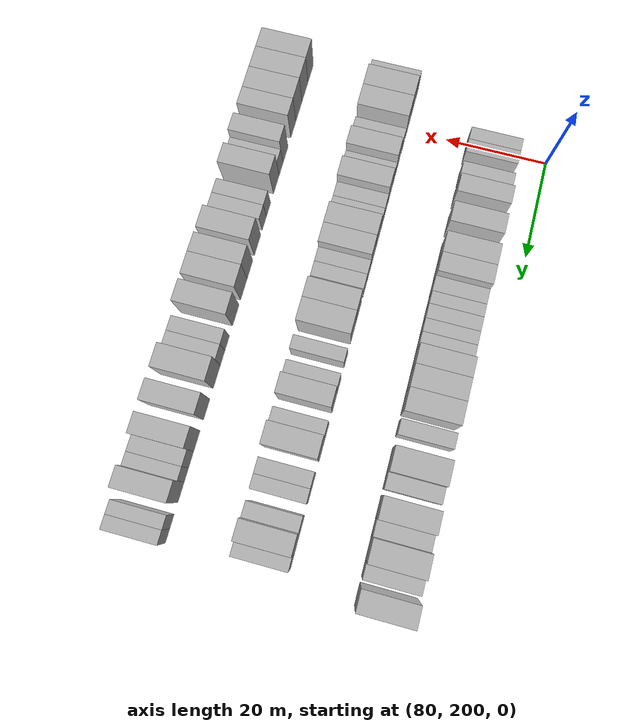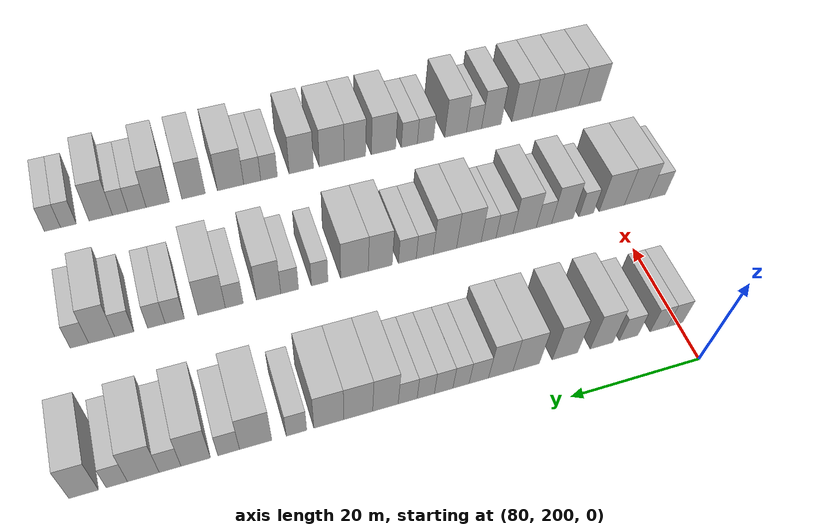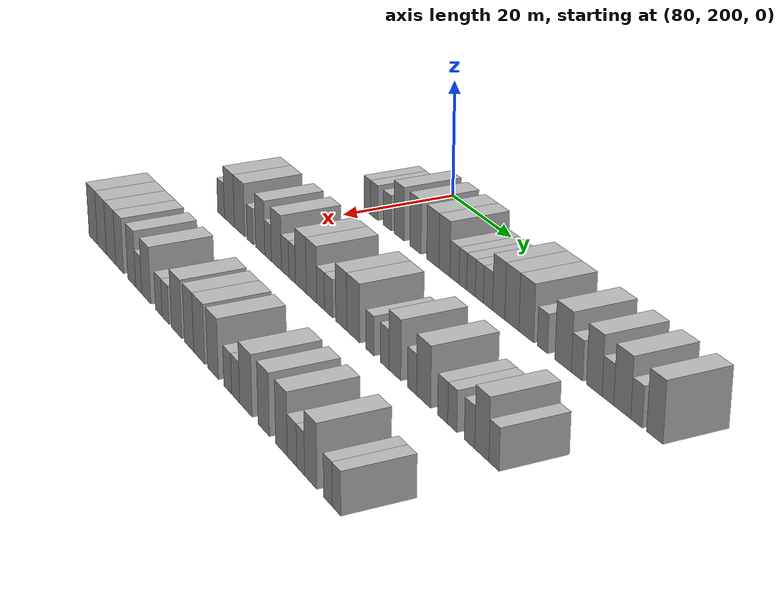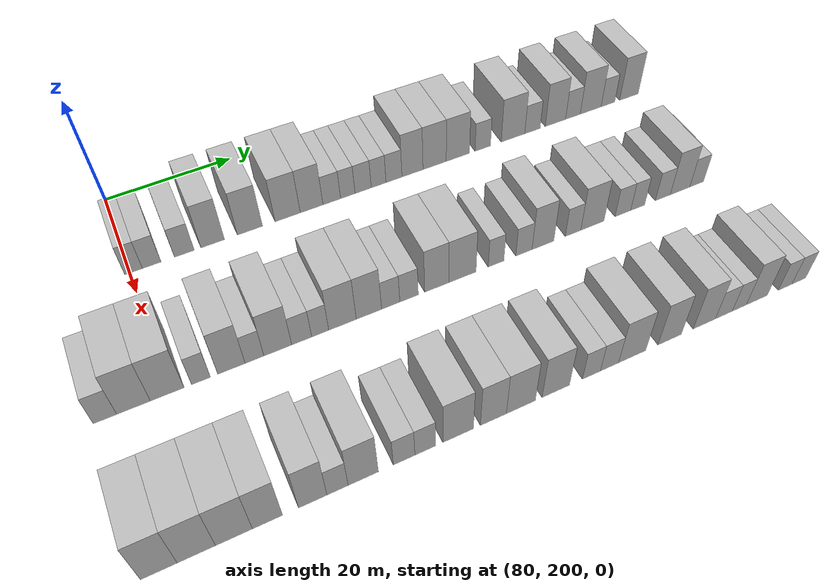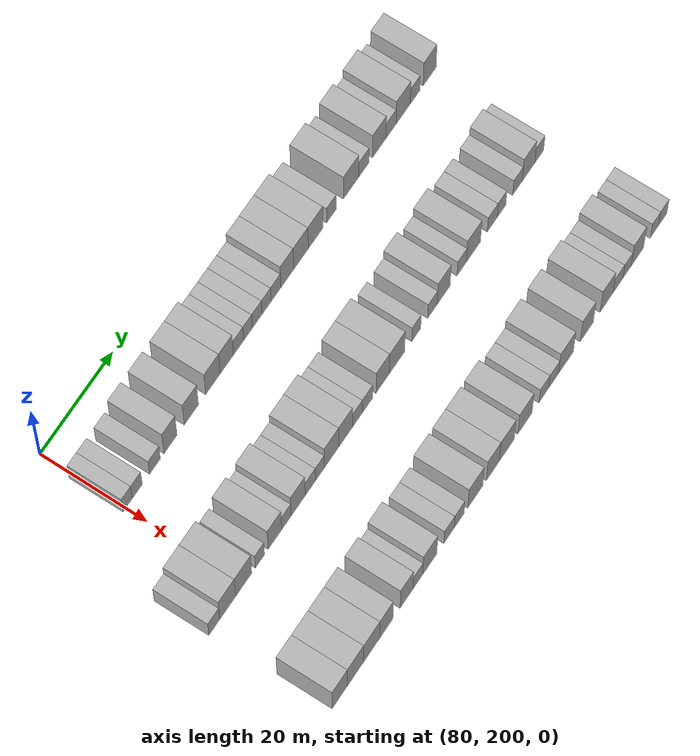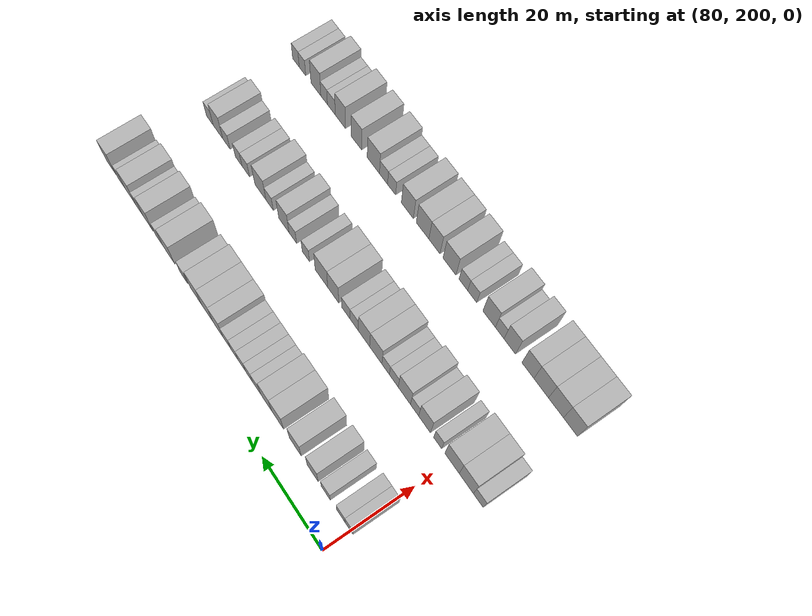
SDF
<sdf version="1.6">
 <world name="default">
  <model name="building_724">
   <static>1</static>
   <pose>91.0000 200.5342 0 0.000000 0.000000 0.000000</pose>
   <link name="link">
    <pose>0 0 3.00 0 0 0</pose>
    <collision name="collision"><geometry><box><size>10.0000 2.5704 6.0000</size></box></geometry></collision>
    <visual name="visual">
     <cast_shadows>0</cast_shadows>
     <geometry><box><size>10.0000 2.5704 6.0000</size></box></geometry>
     <material>
      <script>
       <uri>model://HANNAS_wall/materials/scripts</uri>
       <uri>model://HANNAS_wall/materials/textures</uri>
       <name>vrc/HANNAS_wall</name>
      </script>
     </material>
    </visual>
   </link>
  </model>
  <model name="building_725">
   <static>1</static>
   <pose>91.0000 203.1824 0 0.000000 0.000000 0.000000</pose>
   <link name="link">
    <pose>0 0 3.00 0 0 0</pose>
    <collision name="collision"><geometry><box><size>10.0000 2.7260 6.0000</size></box></geometry></collision>
    <visual name="visual">
     <cast_shadows>0</cast_shadows>
     <geometry><box><size>10.0000 2.7260 6.0000</size></box></geometry>
     <material>
      <script>
       <uri>model://HANNAS_wall/materials/scripts</uri>
       <uri>model://HANNAS_wall/materials/textures</uri>
       <name>vrc/HANNAS_wall</name>
      </script>
     </material>
    </visual>
   </link>
  </model>
  <model name="building_726">
   <static>1</static>
   <pose>91.0000 208.0275 0 0.000000 0.000000 0.000000</pose>
   <link name="link">
    <pose>0 0 3.00 0 0 0</pose>
    <collision name="collision"><geometry><box><size>10.0000 2.9641 6.0000</size></box></geometry></collision>
    <visual name="visual">
     <cast_shadows>0</cast_shadows>
     <geometry><box><size>10.0000 2.9641 6.0000</size></box></geometry>
     <material>
      <script>
       <uri>model://HANNAS_wall/materials/scripts</uri>
       <uri>model://HANNAS_wall/materials/textures</uri>
       <name>vrc/HANNAS_wall</name>
      </script>
     </material>
    </visual>
   </link>
  </model>
  <model name="building_727">
   <static>1</static>
   <pose>91.0000 212.3135 0 0.000000 0.000000 0.000000</pose>
   <link name="link">
    <pose>0 0 4.50 0 0 0</pose>
    <collision name="collision"><geometry><box><size>10.0000 3.6080 9.0000</size></box></geometry></collision>
    <visual name="visual">
     <cast_shadows>0</cast_shadows>
     <geometry><box><size>10.0000 3.6080 9.0000</size></box></geometry>
     <material>
      <script>
       <uri>model://HANNAS_wall/materials/scripts</uri>
       <uri>model://HANNAS_wall/materials/textures</uri>
       <name>vrc/HANNAS_wall</name>
      </script>
     </material>
    </visual>
   </link>
  </model>
  <model name="building_728">
   <static>1</static>
   <pose>91.0000 218.0869 0 0.000000 0.000000 0.000000</pose>
   <link name="link">
    <pose>0 0 4.50 0 0 0</pose>
    <collision name="collision"><geometry><box><size>10.0000 3.9387 9.0000</size></box></geometry></collision>
    <visual name="visual">
     <cast_shadows>0</cast_shadows>
     <geometry><box><size>10.0000 3.9387 9.0000</size></box></geometry>
     <material>
      <script>
       <uri>model://HANNAS_wall/materials/scripts</uri>
       <uri>model://HANNAS_wall/materials/textures</uri>
       <name>vrc/HANNAS_wall</name>
      </script>
     </material>
    </visual>
   </link>
  </model>
  <model name="building_729">
   <static>1</static>
   <pose>91.0000 224.0841 0 0.000000 0.000000 0.000000</pose>
   <link name="link">
    <pose>0 0 4.50 0 0 0</pose>
    <collision name="collision"><geometry><box><size>10.0000 4.0559 9.0000</size></box></geometry></collision>
    <visual name="visual">
     <cast_shadows>0</cast_shadows>
     <geometry><box><size>10.0000 4.0559 9.0000</size></box></geometry>
     <material>
      <script>
       <uri>model://HANNAS_wall/materials/scripts</uri>
       <uri>model://HANNAS_wall/materials/textures</uri>
       <name>vrc/HANNAS_wall</name>
      </script>
     </material>
    </visual>
   </link>
  </model>
  <model name="building_730">
   <static>1</static>
   <pose>91.0000 227.9658 0 0.000000 0.000000 0.000000</pose>
   <link name="link">
    <pose>0 0 4.50 0 0 0</pose>
    <collision name="collision"><geometry><box><size>10.0000 3.7074 9.0000</size></box></geometry></collision>
    <visual name="visual">
     <cast_shadows>0</cast_shadows>
     <geometry><box><size>10.0000 3.7074 9.0000</size></box></geometry>
     <material>
      <script>
       <uri>model://HANNAS_wall/materials/scripts</uri>
       <uri>model://HANNAS_wall/materials/textures</uri>
       <name>vrc/HANNAS_wall</name>
      </script>
     </material>
    </visual>
   </link>
  </model>
  <model name="building_731">
   <static>1</static>
   <pose>91.0000 231.2792 0 0.000000 0.000000 0.000000</pose>
   <link name="link">
    <pose>0 0 3.00 0 0 0</pose>
    <collision name="collision"><geometry><box><size>10.0000 2.9194 6.0000</size></box></geometry></collision>
    <visual name="visual">
     <cast_shadows>0</cast_shadows>
     <geometry><box><size>10.0000 2.9194 6.0000</size></box></geometry>
     <material>
      <script>
       <uri>model://HANNAS_wall/materials/scripts</uri>
       <uri>model://HANNAS_wall/materials/textures</uri>
       <name>vrc/HANNAS_wall</name>
      </script>
     </material>
    </visual>
   </link>
  </model>
  <model name="building_732">
   <static>1</static>
   <pose>91.0000 233.9498 0 0.000000 0.000000 0.000000</pose>
   <link name="link">
    <pose>0 0 3.00 0 0 0</pose>
    <collision name="collision"><geometry><box><size>10.0000 2.4220 6.0000</size></box></geometry></collision>
    <visual name="visual">
     <cast_shadows>0</cast_shadows>
     <geometry><box><size>10.0000 2.4220 6.0000</size></box></geometry>
     <material>
      <script>
       <uri>model://HANNAS_wall/materials/scripts</uri>
       <uri>model://HANNAS_wall/materials/textures</uri>
       <name>vrc/HANNAS_wall</name>
      </script>
     </material>
    </visual>
   </link>
  </model>
  <model name="building_733">
   <static>1</static>
   <pose>91.0000 236.5316 0 0.000000 0.000000 0.000000</pose>
   <link name="link">
    <pose>0 0 3.00 0 0 0</pose>
    <collision name="collision"><geometry><box><size>10.0000 2.7415 6.0000</size></box></geometry></collision>
    <visual name="visual">
     <cast_shadows>0</cast_shadows>
     <geometry><box><size>10.0000 2.7415 6.0000</size></box></geometry>
     <material>
      <script>
       <uri>model://HANNAS_wall/materials/scripts</uri>
       <uri>model://HANNAS_wall/materials/textures</uri>
       <name>vrc/HANNAS_wall</name>
      </script>
     </material>
    </visual>
   </link>
  </model>
  <model name="building_734">
   <static>1</static>
   <pose>91.0000 239.1715 0 0.000000 0.000000 0.000000</pose>
   <link name="link">
    <pose>0 0 3.00 0 0 0</pose>
    <collision name="collision"><geometry><box><size>10.0000 2.5385 6.0000</size></box></geometry></collision>
    <visual name="visual">
     <cast_shadows>0</cast_shadows>
     <geometry><box><size>10.0000 2.5385 6.0000</size></box></geometry>
     <material>
      <script>
       <uri>model://HANNAS_wall/materials/scripts</uri>
       <uri>model://HANNAS_wall/materials/textures</uri>
       <name>vrc/HANNAS_wall</name>
      </script>
     </material>
    </visual>
   </link>
  </model>
  <model name="building_735">
   <static>1</static>
   <pose>91.0000 241.8214 0 0.000000 0.000000 0.000000</pose>
   <link name="link">
    <pose>0 0 3.00 0 0 0</pose>
    <collision name="collision"><geometry><box><size>10.0000 2.7613 6.0000</size></box></geometry></collision>
    <visual name="visual">
     <cast_shadows>0</cast_shadows>
     <geometry><box><size>10.0000 2.7613 6.0000</size></box></geometry>
     <material>
      <script>
       <uri>model://HANNAS_wall/materials/scripts</uri>
       <uri>model://HANNAS_wall/materials/textures</uri>
       <name>vrc/HANNAS_wall</name>
      </script>
     </material>
    </visual>
   </link>
  </model>
  <model name="building_736">
   <static>1</static>
   <pose>91.0000 245.0454 0 0.000000 0.000000 0.000000</pose>
   <link name="link">
    <pose>0 0 4.50 0 0 0</pose>
    <collision name="collision"><geometry><box><size>10.0000 3.6866 9.0000</size></box></geometry></collision>
    <visual name="visual">
     <cast_shadows>0</cast_shadows>
     <geometry><box><size>10.0000 3.6866 9.0000</size></box></geometry>
     <material>
      <script>
       <uri>model://HANNAS_wall/materials/scripts</uri>
       <uri>model://HANNAS_wall/materials/textures</uri>
       <name>vrc/HANNAS_wall</name>
      </script>
     </material>
    </visual>
   </link>
  </model>
  <model name="building_737">
   <static>1</static>
   <pose>91.0000 248.9624 0 0.000000 0.000000 0.000000</pose>
   <link name="link">
    <pose>0 0 4.50 0 0 0</pose>
    <collision name="collision"><geometry><box><size>10.0000 4.1474 9.0000</size></box></geometry></collision>
    <visual name="visual">
     <cast_shadows>0</cast_shadows>
     <geometry><box><size>10.0000 4.1474 9.0000</size></box></geometry>
     <material>
      <script>
       <uri>model://HANNAS_wall/materials/scripts</uri>
       <uri>model://HANNAS_wall/materials/textures</uri>
       <name>vrc/HANNAS_wall</name>
      </script>
     </material>
    </visual>
   </link>
  </model>
  <model name="building_738">
   <static>1</static>
   <pose>91.0000 253.1452 0 0.000000 0.000000 0.000000</pose>
   <link name="link">
    <pose>0 0 4.50 0 0 0</pose>
    <collision name="collision"><geometry><box><size>10.0000 4.2182 9.0000</size></box></geometry></collision>
    <visual name="visual">
     <cast_shadows>0</cast_shadows>
     <geometry><box><size>10.0000 4.2182 9.0000</size></box></geometry>
     <material>
      <script>
       <uri>model://HANNAS_wall/materials/scripts</uri>
       <uri>model://HANNAS_wall/materials/textures</uri>
       <name>vrc/HANNAS_wall</name>
      </script>
     </material>
    </visual>
   </link>
  </model>
  <model name="building_739">
   <static>1</static>
   <pose>91.0000 257.6823 0 0.000000 0.000000 0.000000</pose>
   <link name="link">
    <pose>0 0 3.00 0 0 0</pose>
    <collision name="collision"><geometry><box><size>10.0000 2.8561 6.0000</size></box></geometry></collision>
    <visual name="visual">
     <cast_shadows>0</cast_shadows>
     <geometry><box><size>10.0000 2.8561 6.0000</size></box></geometry>
     <material>
      <script>
       <uri>model://HANNAS_wall/materials/scripts</uri>
       <uri>model://HANNAS_wall/materials/textures</uri>
       <name>vrc/HANNAS_wall</name>
      </script>
     </material>
    </visual>
   </link>
  </model>
  <model name="building_740">
   <static>1</static>
   <pose>91.0000 263.3338 0 0.000000 0.000000 0.000000</pose>
   <link name="link">
    <pose>0 0 4.50 0 0 0</pose>
    <collision name="collision"><geometry><box><size>10.0000 4.4469 9.0000</size></box></geometry></collision>
    <visual name="visual">
     <cast_shadows>0</cast_shadows>
     <geometry><box><size>10.0000 4.4469 9.0000</size></box></geometry>
     <material>
      <script>
       <uri>model://HANNAS_wall/materials/scripts</uri>
       <uri>model://HANNAS_wall/materials/textures</uri>
       <name>vrc/HANNAS_wall</name>
      </script>
     </material>
    </visual>
   </link>
  </model>
  <model name="building_741">
   <static>1</static>
   <pose>91.0000 267.0272 0 0.000000 0.000000 0.000000</pose>
   <link name="link">
    <pose>0 0 3.00 0 0 0</pose>
    <collision name="collision"><geometry><box><size>10.0000 2.9398 6.0000</size></box></geometry></collision>
    <visual name="visual">
     <cast_shadows>0</cast_shadows>
     <geometry><box><size>10.0000 2.9398 6.0000</size></box></geometry>
     <material>
      <script>
       <uri>model://HANNAS_wall/materials/scripts</uri>
       <uri>model://HANNAS_wall/materials/textures</uri>
       <name>vrc/HANNAS_wall</name>
      </script>
     </material>
    </visual>
   </link>
  </model>
  <model name="building_742">
   <static>1</static>
   <pose>91.0000 271.4729 0 0.000000 0.000000 0.000000</pose>
   <link name="link">
    <pose>0 0 4.50 0 0 0</pose>
    <collision name="collision"><geometry><box><size>10.0000 3.9518 9.0000</size></box></geometry></collision>
    <visual name="visual">
     <cast_shadows>0</cast_shadows>
     <geometry><box><size>10.0000 3.9518 9.0000</size></box></geometry>
     <material>
      <script>
       <uri>model://HANNAS_wall/materials/scripts</uri>
       <uri>model://HANNAS_wall/materials/textures</uri>
       <name>vrc/HANNAS_wall</name>
      </script>
     </material>
    </visual>
   </link>
  </model>
  <model name="building_743">
   <static>1</static>
   <pose>91.0000 274.9018 0 0.000000 0.000000 0.000000</pose>
   <link name="link">
    <pose>0 0 3.00 0 0 0</pose>
    <collision name="collision"><geometry><box><size>10.0000 2.9060 6.0000</size></box></geometry></collision>
    <visual name="visual">
     <cast_shadows>0</cast_shadows>
     <geometry><box><size>10.0000 2.9060 6.0000</size></box></geometry>
     <material>
      <script>
       <uri>model://HANNAS_wall/materials/scripts</uri>
       <uri>model://HANNAS_wall/materials/textures</uri>
       <name>vrc/HANNAS_wall</name>
      </script>
     </material>
    </visual>
   </link>
  </model>
  <model name="building_744">
   <static>1</static>
   <pose>91.0000 278.4421 0 0.000000 0.000000 0.000000</pose>
   <link name="link">
    <pose>0 0 4.50 0 0 0</pose>
    <collision name="collision"><geometry><box><size>10.0000 4.1746 9.0000</size></box></geometry></collision>
    <visual name="visual">
     <cast_shadows>0</cast_shadows>
     <geometry><box><size>10.0000 4.1746 9.0000</size></box></geometry>
     <material>
      <script>
       <uri>model://HANNAS_wall/materials/scripts</uri>
       <uri>model://HANNAS_wall/materials/textures</uri>
       <name>vrc/HANNAS_wall</name>
      </script>
     </material>
    </visual>
   </link>
  </model>
  <model name="building_745">
   <static>1</static>
   <pose>91.0000 281.9155 0 0.000000 0.000000 0.000000</pose>
   <link name="link">
    <pose>0 0 3.00 0 0 0</pose>
    <collision name="collision"><geometry><box><size>10.0000 2.7722 6.0000</size></box></geometry></collision>
    <visual name="visual">
     <cast_shadows>0</cast_shadows>
     <geometry><box><size>10.0000 2.7722 6.0000</size></box></geometry>
     <material>
      <script>
       <uri>model://HANNAS_wall/materials/scripts</uri>
       <uri>model://HANNAS_wall/materials/textures</uri>
       <name>vrc/HANNAS_wall</name>
      </script>
     </material>
    </visual>
   </link>
  </model>
  <model name="building_746">
   <static>1</static>
   <pose>91.0000 286.2061 0 0.000000 0.000000 0.000000</pose>
   <link name="link">
    <pose>0 0 4.50 0 0 0</pose>
    <collision name="collision"><geometry><box><size>10.0000 3.8089 9.0000</size></box></geometry></collision>
    <visual name="visual">
     <cast_shadows>0</cast_shadows>
     <geometry><box><size>10.0000 3.8089 9.0000</size></box></geometry>
     <material>
      <script>
       <uri>model://HANNAS_wall/materials/scripts</uri>
       <uri>model://HANNAS_wall/materials/textures</uri>
       <name>vrc/HANNAS_wall</name>
      </script>
     </material>
    </visual>
   </link>
  </model>
  <model name="building_910">
   <static>1</static>
   <pose>113.0000 191.5441 0 0.000000 0.000000 0.000000</pose>
   <link name="link">
    <pose>0 0 3.00 0 0 0</pose>
    <collision name="collision"><geometry><box><size>10.0000 2.9825 6.0000</size></box></geometry></collision>
    <visual name="visual">
     <cast_shadows>0</cast_shadows>
     <geometry><box><size>10.0000 2.9825 6.0000</size></box></geometry>
     <material>
      <script>
       <uri>model://HANNAS_wall/materials/scripts</uri>
       <uri>model://HANNAS_wall/materials/textures</uri>
       <name>vrc/HANNAS_wall</name>
      </script>
     </material>
    </visual>
   </link>
  </model>
  <model name="building_911">
   <static>1</static>
   <pose>113.0000 195.2079 0 0.000000 0.000000 0.000000</pose>
   <link name="link">
    <pose>0 0 4.50 0 0 0</pose>
    <collision name="collision"><geometry><box><size>10.0000 4.3450 9.0000</size></box></geometry></collision>
    <visual name="visual">
     <cast_shadows>0</cast_shadows>
     <geometry><box><size>10.0000 4.3450 9.0000</size></box></geometry>
     <material>
      <script>
       <uri>model://HANNAS_wall/materials/scripts</uri>
       <uri>model://HANNAS_wall/materials/textures</uri>
       <name>vrc/HANNAS_wall</name>
      </script>
     </material>
    </visual>
   </link>
  </model>
  <model name="building_912">
   <static>1</static>
   <pose>113.0000 199.6008 0 0.000000 0.000000 0.000000</pose>
   <link name="link">
    <pose>0 0 4.50 0 0 0</pose>
    <collision name="collision"><geometry><box><size>10.0000 4.4407 9.0000</size></box></geometry></collision>
    <visual name="visual">
     <cast_shadows>0</cast_shadows>
     <geometry><box><size>10.0000 4.4407 9.0000</size></box></geometry>
     <material>
      <script>
       <uri>model://HANNAS_wall/materials/scripts</uri>
       <uri>model://HANNAS_wall/materials/textures</uri>
       <name>vrc/HANNAS_wall</name>
      </script>
     </material>
    </visual>
   </link>
  </model>
  <model name="building_913">
   <static>1</static>
   <pose>113.0000 204.0916 0 0.000000 0.000000 0.000000</pose>
   <link name="link">
    <pose>0 0 3.00 0 0 0</pose>
    <collision name="collision"><geometry><box><size>10.0000 2.5409 6.0000</size></box></geometry></collision>
    <visual name="visual">
     <cast_shadows>0</cast_shadows>
     <geometry><box><size>10.0000 2.5409 6.0000</size></box></geometry>
     <material>
      <script>
       <uri>model://HANNAS_wall/materials/scripts</uri>
       <uri>model://HANNAS_wall/materials/textures</uri>
       <name>vrc/HANNAS_wall</name>
      </script>
     </material>
    </visual>
   </link>
  </model>
  <model name="building_914">
   <static>1</static>
   <pose>113.0000 208.2431 0 0.000000 0.000000 0.000000</pose>
   <link name="link">
    <pose>0 0 4.50 0 0 0</pose>
    <collision name="collision"><geometry><box><size>10.0000 3.7622 9.0000</size></box></geometry></collision>
    <visual name="visual">
     <cast_shadows>0</cast_shadows>
     <geometry><box><size>10.0000 3.7622 9.0000</size></box></geometry>
     <material>
      <script>
       <uri>model://HANNAS_wall/materials/scripts</uri>
       <uri>model://HANNAS_wall/materials/textures</uri>
       <name>vrc/HANNAS_wall</name>
      </script>
     </material>
    </visual>
   </link>
  </model>
  <model name="building_915">
   <static>1</static>
   <pose>113.0000 211.4330 0 0.000000 0.000000 0.000000</pose>
   <link name="link">
    <pose>0 0 3.00 0 0 0</pose>
    <collision name="collision"><geometry><box><size>10.0000 2.6177 6.0000</size></box></geometry></collision>
    <visual name="visual">
     <cast_shadows>0</cast_shadows>
     <geometry><box><size>10.0000 2.6177 6.0000</size></box></geometry>
     <material>
      <script>
       <uri>model://HANNAS_wall/materials/scripts</uri>
       <uri>model://HANNAS_wall/materials/textures</uri>
       <name>vrc/HANNAS_wall</name>
      </script>
     </material>
    </visual>
   </link>
  </model>
  <model name="building_916">
   <static>1</static>
   <pose>113.0000 214.7199 0 0.000000 0.000000 0.000000</pose>
   <link name="link">
    <pose>0 0 4.50 0 0 0</pose>
    <collision name="collision"><geometry><box><size>10.0000 3.9561 9.0000</size></box></geometry></collision>
    <visual name="visual">
     <cast_shadows>0</cast_shadows>
     <geometry><box><size>10.0000 3.9561 9.0000</size></box></geometry>
     <material>
      <script>
       <uri>model://HANNAS_wall/materials/scripts</uri>
       <uri>model://HANNAS_wall/materials/textures</uri>
       <name>vrc/HANNAS_wall</name>
      </script>
     </material>
    </visual>
   </link>
  </model>
  <model name="building_917">
   <static>1</static>
   <pose>113.0000 218.1390 0 0.000000 0.000000 0.000000</pose>
   <link name="link">
    <pose>0 0 3.00 0 0 0</pose>
    <collision name="collision"><geometry><box><size>10.0000 2.8820 6.0000</size></box></geometry></collision>
    <visual name="visual">
     <cast_shadows>0</cast_shadows>
     <geometry><box><size>10.0000 2.8820 6.0000</size></box></geometry>
     <material>
      <script>
       <uri>model://HANNAS_wall/materials/scripts</uri>
       <uri>model://HANNAS_wall/materials/textures</uri>
       <name>vrc/HANNAS_wall</name>
      </script>
     </material>
    </visual>
   </link>
  </model>
  <model name="building_918">
   <static>1</static>
   <pose>113.0000 220.8235 0 0.000000 0.000000 0.000000</pose>
   <link name="link">
    <pose>0 0 3.00 0 0 0</pose>
    <collision name="collision"><geometry><box><size>10.0000 2.4869 6.0000</size></box></geometry></collision>
    <visual name="visual">
     <cast_shadows>0</cast_shadows>
     <geometry><box><size>10.0000 2.4869 6.0000</size></box></geometry>
     <material>
      <script>
       <uri>model://HANNAS_wall/materials/scripts</uri>
       <uri>model://HANNAS_wall/materials/textures</uri>
       <name>vrc/HANNAS_wall</name>
      </script>
     </material>
    </visual>
   </link>
  </model>
  <model name="building_919">
   <static>1</static>
   <pose>113.0000 224.1054 0 0.000000 0.000000 0.000000</pose>
   <link name="link">
    <pose>0 0 4.50 0 0 0</pose>
    <collision name="collision"><geometry><box><size>10.0000 4.0770 9.0000</size></box></geometry></collision>
    <visual name="visual">
     <cast_shadows>0</cast_shadows>
     <geometry><box><size>10.0000 4.0770 9.0000</size></box></geometry>
     <material>
      <script>
       <uri>model://HANNAS_wall/materials/scripts</uri>
       <uri>model://HANNAS_wall/materials/textures</uri>
       <name>vrc/HANNAS_wall</name>
      </script>
     </material>
    </visual>
   </link>
  </model>
  <model name="building_920">
   <static>1</static>
   <pose>113.0000 228.0593 0 0.000000 0.000000 0.000000</pose>
   <link name="link">
    <pose>0 0 4.50 0 0 0</pose>
    <collision name="collision"><geometry><box><size>10.0000 3.8308 9.0000</size></box></geometry></collision>
    <visual name="visual">
     <cast_shadows>0</cast_shadows>
     <geometry><box><size>10.0000 3.8308 9.0000</size></box></geometry>
     <material>
      <script>
       <uri>model://HANNAS_wall/materials/scripts</uri>
       <uri>model://HANNAS_wall/materials/textures</uri>
       <name>vrc/HANNAS_wall</name>
      </script>
     </material>
    </visual>
   </link>
  </model>
  <model name="building_921">
   <static>1</static>
   <pose>113.0000 231.3707 0 0.000000 0.000000 0.000000</pose>
   <link name="link">
    <pose>0 0 3.00 0 0 0</pose>
    <collision name="collision"><geometry><box><size>10.0000 2.7920 6.0000</size></box></geometry></collision>
    <visual name="visual">
     <cast_shadows>0</cast_shadows>
     <geometry><box><size>10.0000 2.7920 6.0000</size></box></geometry>
     <material>
      <script>
       <uri>model://HANNAS_wall/materials/scripts</uri>
       <uri>model://HANNAS_wall/materials/textures</uri>
       <name>vrc/HANNAS_wall</name>
      </script>
     </material>
    </visual>
   </link>
  </model>
  <model name="building_922">
   <static>1</static>
   <pose>113.0000 234.2070 0 0.000000 0.000000 0.000000</pose>
   <link name="link">
    <pose>0 0 3.00 0 0 0</pose>
    <collision name="collision"><geometry><box><size>10.0000 2.8806 6.0000</size></box></geometry></collision>
    <visual name="visual">
     <cast_shadows>0</cast_shadows>
     <geometry><box><size>10.0000 2.8806 6.0000</size></box></geometry>
     <material>
      <script>
       <uri>model://HANNAS_wall/materials/scripts</uri>
       <uri>model://HANNAS_wall/materials/textures</uri>
       <name>vrc/HANNAS_wall</name>
      </script>
     </material>
    </visual>
   </link>
  </model>
  <model name="building_923">
   <static>1</static>
   <pose>113.0000 238.5660 0 0.000000 0.000000 0.000000</pose>
   <link name="link">
    <pose>0 0 4.50 0 0 0</pose>
    <collision name="collision"><geometry><box><size>10.0000 3.8374 9.0000</size></box></geometry></collision>
    <visual name="visual">
     <cast_shadows>0</cast_shadows>
     <geometry><box><size>10.0000 3.8374 9.0000</size></box></geometry>
     <material>
      <script>
       <uri>model://HANNAS_wall/materials/scripts</uri>
       <uri>model://HANNAS_wall/materials/textures</uri>
       <name>vrc/HANNAS_wall</name>
      </script>
     </material>
    </visual>
   </link>
  </model>
  <model name="building_924">
   <static>1</static>
   <pose>113.0000 242.6773 0 0.000000 0.000000 0.000000</pose>
   <link name="link">
    <pose>0 0 4.50 0 0 0</pose>
    <collision name="collision"><geometry><box><size>10.0000 4.3852 9.0000</size></box></geometry></collision>
    <visual name="visual">
     <cast_shadows>0</cast_shadows>
     <geometry><box><size>10.0000 4.3852 9.0000</size></box></geometry>
     <material>
      <script>
       <uri>model://HANNAS_wall/materials/scripts</uri>
       <uri>model://HANNAS_wall/materials/textures</uri>
       <name>vrc/HANNAS_wall</name>
      </script>
     </material>
    </visual>
   </link>
  </model>
  <model name="building_925">
   <static>1</static>
   <pose>113.0000 248.1634 0 0.000000 0.000000 0.000000</pose>
   <link name="link">
    <pose>0 0 3.00 0 0 0</pose>
    <collision name="collision"><geometry><box><size>10.0000 2.5870 6.0000</size></box></geometry></collision>
    <visual name="visual">
     <cast_shadows>0</cast_shadows>
     <geometry><box><size>10.0000 2.5870 6.0000</size></box></geometry>
     <material>
      <script>
       <uri>model://HANNAS_wall/materials/scripts</uri>
       <uri>model://HANNAS_wall/materials/textures</uri>
       <name>vrc/HANNAS_wall</name>
      </script>
     </material>
    </visual>
   </link>
  </model>
  <model name="building_926">
   <static>1</static>
   <pose>113.0000 252.8270 0 0.000000 0.000000 0.000000</pose>
   <link name="link">
    <pose>0 0 3.00 0 0 0</pose>
    <collision name="collision"><geometry><box><size>10.0000 2.7401 6.0000</size></box></geometry></collision>
    <visual name="visual">
     <cast_shadows>0</cast_shadows>
     <geometry><box><size>10.0000 2.7401 6.0000</size></box></geometry>
     <material>
      <script>
       <uri>model://HANNAS_wall/materials/scripts</uri>
       <uri>model://HANNAS_wall/materials/textures</uri>
       <name>vrc/HANNAS_wall</name>
      </script>
     </material>
    </visual>
   </link>
  </model>
  <model name="building_927">
   <static>1</static>
   <pose>113.0000 256.0649 0 0.000000 0.000000 0.000000</pose>
   <link name="link">
    <pose>0 0 4.50 0 0 0</pose>
    <collision name="collision"><geometry><box><size>10.0000 3.7357 9.0000</size></box></geometry></collision>
    <visual name="visual">
     <cast_shadows>0</cast_shadows>
     <geometry><box><size>10.0000 3.7357 9.0000</size></box></geometry>
     <material>
      <script>
       <uri>model://HANNAS_wall/materials/scripts</uri>
       <uri>model://HANNAS_wall/materials/textures</uri>
       <name>vrc/HANNAS_wall</name>
      </script>
     </material>
    </visual>
   </link>
  </model>
  <model name="building_928">
   <static>1</static>
   <pose>113.0000 261.2909 0 0.000000 0.000000 0.000000</pose>
   <link name="link">
    <pose>0 0 3.00 0 0 0</pose>
    <collision name="collision"><geometry><box><size>10.0000 2.7164 6.0000</size></box></geometry></collision>
    <visual name="visual">
     <cast_shadows>0</cast_shadows>
     <geometry><box><size>10.0000 2.7164 6.0000</size></box></geometry>
     <material>
      <script>
       <uri>model://HANNAS_wall/materials/scripts</uri>
       <uri>model://HANNAS_wall/materials/textures</uri>
       <name>vrc/HANNAS_wall</name>
      </script>
     </material>
    </visual>
   </link>
  </model>
  <model name="building_929">
   <static>1</static>
   <pose>113.0000 264.7103 0 0.000000 0.000000 0.000000</pose>
   <link name="link">
    <pose>0 0 4.50 0 0 0</pose>
    <collision name="collision"><geometry><box><size>10.0000 4.1224 9.0000</size></box></geometry></collision>
    <visual name="visual">
     <cast_shadows>0</cast_shadows>
     <geometry><box><size>10.0000 4.1224 9.0000</size></box></geometry>
     <material>
      <script>
       <uri>model://HANNAS_wall/materials/scripts</uri>
       <uri>model://HANNAS_wall/materials/textures</uri>
       <name>vrc/HANNAS_wall</name>
      </script>
     </material>
    </visual>
   </link>
  </model>
  <model name="building_930">
   <static>1</static>
   <pose>113.0000 270.1968 0 0.000000 0.000000 0.000000</pose>
   <link name="link">
    <pose>0 0 3.00 0 0 0</pose>
    <collision name="collision"><geometry><box><size>10.0000 2.8506 6.0000</size></box></geometry></collision>
    <visual name="visual">
     <cast_shadows>0</cast_shadows>
     <geometry><box><size>10.0000 2.8506 6.0000</size></box></geometry>
     <material>
      <script>
       <uri>model://HANNAS_wall/materials/scripts</uri>
       <uri>model://HANNAS_wall/materials/textures</uri>
       <name>vrc/HANNAS_wall</name>
      </script>
     </material>
    </visual>
   </link>
  </model>
  <model name="building_931">
   <static>1</static>
   <pose>113.0000 272.9106 0 0.000000 0.000000 0.000000</pose>
   <link name="link">
    <pose>0 0 3.00 0 0 0</pose>
    <collision name="collision"><geometry><box><size>10.0000 2.5770 6.0000</size></box></geometry></collision>
    <visual name="visual">
     <cast_shadows>0</cast_shadows>
     <geometry><box><size>10.0000 2.5770 6.0000</size></box></geometry>
     <material>
      <script>
       <uri>model://HANNAS_wall/materials/scripts</uri>
       <uri>model://HANNAS_wall/materials/textures</uri>
       <name>vrc/HANNAS_wall</name>
      </script>
     </material>
    </visual>
   </link>
  </model>
  <model name="building_932">
   <static>1</static>
   <pose>113.0000 277.6025 0 0.000000 0.000000 0.000000</pose>
   <link name="link">
    <pose>0 0 3.00 0 0 0</pose>
    <collision name="collision"><geometry><box><size>10.0000 2.8069 6.0000</size></box></geometry></collision>
    <visual name="visual">
     <cast_shadows>0</cast_shadows>
     <geometry><box><size>10.0000 2.8069 6.0000</size></box></geometry>
     <material>
      <script>
       <uri>model://HANNAS_wall/materials/scripts</uri>
       <uri>model://HANNAS_wall/materials/textures</uri>
       <name>vrc/HANNAS_wall</name>
      </script>
     </material>
    </visual>
   </link>
  </model>
  <model name="building_933">
   <static>1</static>
   <pose>113.0000 280.8656 0 0.000000 0.000000 0.000000</pose>
   <link name="link">
    <pose>0 0 4.50 0 0 0</pose>
    <collision name="collision"><geometry><box><size>10.0000 3.7192 9.0000</size></box></geometry></collision>
    <visual name="visual">
     <cast_shadows>0</cast_shadows>
     <geometry><box><size>10.0000 3.7192 9.0000</size></box></geometry>
     <material>
      <script>
       <uri>model://HANNAS_wall/materials/scripts</uri>
       <uri>model://HANNAS_wall/materials/textures</uri>
       <name>vrc/HANNAS_wall</name>
      </script>
     </material>
    </visual>
   </link>
  </model>
  <model name="building_934">
   <static>1</static>
   <pose>113.0000 284.0439 0 0.000000 0.000000 0.000000</pose>
   <link name="link">
    <pose>0 0 3.00 0 0 0</pose>
    <collision name="collision"><geometry><box><size>10.0000 2.6374 6.0000</size></box></geometry></collision>
    <visual name="visual">
     <cast_shadows>0</cast_shadows>
     <geometry><box><size>10.0000 2.6374 6.0000</size></box></geometry>
     <material>
      <script>
       <uri>model://HANNAS_wall/materials/scripts</uri>
       <uri>model://HANNAS_wall/materials/textures</uri>
       <name>vrc/HANNAS_wall</name>
      </script>
     </material>
    </visual>
   </link>
  </model>
  <model name="building_1098">
   <static>1</static>
   <pose>135.0000 192.7473 0 0.000000 0.000000 0.000000</pose>
   <link name="link">
    <pose>0 0 4.50 0 0 0</pose>
    <collision name="collision"><geometry><box><size>10.0000 4.2201 9.0000</size></box></geometry></collision>
    <visual name="visual">
     <cast_shadows>0</cast_shadows>
     <geometry><box><size>10.0000 4.2201 9.0000</size></box></geometry>
     <material>
      <script>
       <uri>model://HANNAS_wall/materials/scripts</uri>
       <uri>model://HANNAS_wall/materials/textures</uri>
       <name>vrc/HANNAS_wall</name>
      </script>
     </material>
    </visual>
   </link>
  </model>
  <model name="building_1099">
   <static>1</static>
   <pose>135.0000 197.1069 0 0.000000 0.000000 0.000000</pose>
   <link name="link">
    <pose>0 0 4.50 0 0 0</pose>
    <collision name="collision"><geometry><box><size>10.0000 4.4991 9.0000</size></box></geometry></collision>
    <visual name="visual">
     <cast_shadows>0</cast_shadows>
     <geometry><box><size>10.0000 4.4991 9.0000</size></box></geometry>
     <material>
      <script>
       <uri>model://HANNAS_wall/materials/scripts</uri>
       <uri>model://HANNAS_wall/materials/textures</uri>
       <name>vrc/HANNAS_wall</name>
      </script>
     </material>
    </visual>
   </link>
  </model>
  <model name="building_1100">
   <static>1</static>
   <pose>135.0000 201.5821 0 0.000000 0.000000 0.000000</pose>
   <link name="link">
    <pose>0 0 4.50 0 0 0</pose>
    <collision name="collision"><geometry><box><size>10.0000 4.4512 9.0000</size></box></geometry></collision>
    <visual name="visual">
     <cast_shadows>0</cast_shadows>
     <geometry><box><size>10.0000 4.4512 9.0000</size></box></geometry>
     <material>
      <script>
       <uri>model://HANNAS_wall/materials/scripts</uri>
       <uri>model://HANNAS_wall/materials/textures</uri>
       <name>vrc/HANNAS_wall</name>
      </script>
     </material>
    </visual>
   </link>
  </model>
  <model name="building_1101">
   <static>1</static>
   <pose>135.0000 205.6603 0 0.000000 0.000000 0.000000</pose>
   <link name="link">
    <pose>0 0 4.50 0 0 0</pose>
    <collision name="collision"><geometry><box><size>10.0000 3.7053 9.0000</size></box></geometry></collision>
    <visual name="visual">
     <cast_shadows>0</cast_shadows>
     <geometry><box><size>10.0000 3.7053 9.0000</size></box></geometry>
     <material>
      <script>
       <uri>model://HANNAS_wall/materials/scripts</uri>
       <uri>model://HANNAS_wall/materials/textures</uri>
       <name>vrc/HANNAS_wall</name>
      </script>
     </material>
    </visual>
   </link>
  </model>
  <model name="building_1102">
   <static>1</static>
   <pose>135.0000 211.3198 0 0.000000 0.000000 0.000000</pose>
   <link name="link">
    <pose>0 0 4.50 0 0 0</pose>
    <collision name="collision"><geometry><box><size>10.0000 3.6137 9.0000</size></box></geometry></collision>
    <visual name="visual">
     <cast_shadows>0</cast_shadows>
     <geometry><box><size>10.0000 3.6137 9.0000</size></box></geometry>
     <material>
      <script>
       <uri>model://HANNAS_wall/materials/scripts</uri>
       <uri>model://HANNAS_wall/materials/textures</uri>
       <name>vrc/HANNAS_wall</name>
      </script>
     </material>
    </visual>
   </link>
  </model>
  <model name="building_1103">
   <static>1</static>
   <pose>135.0000 214.5004 0 0.000000 0.000000 0.000000</pose>
   <link name="link">
    <pose>0 0 3.00 0 0 0</pose>
    <collision name="collision"><geometry><box><size>10.0000 2.7474 6.0000</size></box></geometry></collision>
    <visual name="visual">
     <cast_shadows>0</cast_shadows>
     <geometry><box><size>10.0000 2.7474 6.0000</size></box></geometry>
     <material>
      <script>
       <uri>model://HANNAS_wall/materials/scripts</uri>
       <uri>model://HANNAS_wall/materials/textures</uri>
       <name>vrc/HANNAS_wall</name>
      </script>
     </material>
    </visual>
   </link>
  </model>
  <model name="building_1104">
   <static>1</static>
   <pose>135.0000 217.8619 0 0.000000 0.000000 0.000000</pose>
   <link name="link">
    <pose>0 0 4.50 0 0 0</pose>
    <collision name="collision"><geometry><box><size>10.0000 3.9757 9.0000</size></box></geometry></collision>
    <visual name="visual">
     <cast_shadows>0</cast_shadows>
     <geometry><box><size>10.0000 3.9757 9.0000</size></box></geometry>
     <material>
      <script>
       <uri>model://HANNAS_wall/materials/scripts</uri>
       <uri>model://HANNAS_wall/materials/textures</uri>
       <name>vrc/HANNAS_wall</name>
      </script>
     </material>
    </visual>
   </link>
  </model>
  <model name="building_1105">
   <static>1</static>
   <pose>135.0000 223.3102 0 0.000000 0.000000 0.000000</pose>
   <link name="link">
    <pose>0 0 3.00 0 0 0</pose>
    <collision name="collision"><geometry><box><size>10.0000 2.9209 6.0000</size></box></geometry></collision>
    <visual name="visual">
     <cast_shadows>0</cast_shadows>
     <geometry><box><size>10.0000 2.9209 6.0000</size></box></geometry>
     <material>
      <script>
       <uri>model://HANNAS_wall/materials/scripts</uri>
       <uri>model://HANNAS_wall/materials/textures</uri>
       <name>vrc/HANNAS_wall</name>
      </script>
     </material>
    </visual>
   </link>
  </model>
  <model name="building_1106">
   <static>1</static>
   <pose>135.0000 226.1983 0 0.000000 0.000000 0.000000</pose>
   <link name="link">
    <pose>0 0 3.00 0 0 0</pose>
    <collision name="collision"><geometry><box><size>10.0000 2.8551 6.0000</size></box></geometry></collision>
    <visual name="visual">
     <cast_shadows>0</cast_shadows>
     <geometry><box><size>10.0000 2.8551 6.0000</size></box></geometry>
     <material>
      <script>
       <uri>model://HANNAS_wall/materials/scripts</uri>
       <uri>model://HANNAS_wall/materials/textures</uri>
       <name>vrc/HANNAS_wall</name>
      </script>
     </material>
    </visual>
   </link>
  </model>
  <model name="building_1107">
   <static>1</static>
   <pose>135.0000 230.7767 0 0.000000 0.000000 0.000000</pose>
   <link name="link">
    <pose>0 0 4.50 0 0 0</pose>
    <collision name="collision"><geometry><box><size>10.0000 4.3017 9.0000</size></box></geometry></collision>
    <visual name="visual">
     <cast_shadows>0</cast_shadows>
     <geometry><box><size>10.0000 4.3017 9.0000</size></box></geometry>
     <material>
      <script>
       <uri>model://HANNAS_wall/materials/scripts</uri>
       <uri>model://HANNAS_wall/materials/textures</uri>
       <name>vrc/HANNAS_wall</name>
      </script>
     </material>
    </visual>
   </link>
  </model>
  <model name="building_1108">
   <static>1</static>
   <pose>135.0000 235.8021 0 0.000000 0.000000 0.000000</pose>
   <link name="link">
    <pose>0 0 4.50 0 0 0</pose>
    <collision name="collision"><geometry><box><size>10.0000 3.7490 9.0000</size></box></geometry></collision>
    <visual name="visual">
     <cast_shadows>0</cast_shadows>
     <geometry><box><size>10.0000 3.7490 9.0000</size></box></geometry>
     <material>
      <script>
       <uri>model://HANNAS_wall/materials/scripts</uri>
       <uri>model://HANNAS_wall/materials/textures</uri>
       <name>vrc/HANNAS_wall</name>
      </script>
     </material>
    </visual>
   </link>
  </model>
  <model name="building_1109">
   <static>1</static>
   <pose>135.0000 239.8174 0 0.000000 0.000000 0.000000</pose>
   <link name="link">
    <pose>0 0 4.50 0 0 0</pose>
    <collision name="collision"><geometry><box><size>10.0000 4.2817 9.0000</size></box></geometry></collision>
    <visual name="visual">
     <cast_shadows>0</cast_shadows>
     <geometry><box><size>10.0000 4.2817 9.0000</size></box></geometry>
     <material>
      <script>
       <uri>model://HANNAS_wall/materials/scripts</uri>
       <uri>model://HANNAS_wall/materials/textures</uri>
       <name>vrc/HANNAS_wall</name>
      </script>
     </material>
    </visual>
   </link>
  </model>
  <model name="building_1110">
   <static>1</static>
   <pose>135.0000 245.0306 0 0.000000 0.000000 0.000000</pose>
   <link name="link">
    <pose>0 0 4.50 0 0 0</pose>
    <collision name="collision"><geometry><box><size>10.0000 4.1447 9.0000</size></box></geometry></collision>
    <visual name="visual">
     <cast_shadows>0</cast_shadows>
     <geometry><box><size>10.0000 4.1447 9.0000</size></box></geometry>
     <material>
      <script>
       <uri>model://HANNAS_wall/materials/scripts</uri>
       <uri>model://HANNAS_wall/materials/textures</uri>
       <name>vrc/HANNAS_wall</name>
      </script>
     </material>
    </visual>
   </link>
  </model>
  <model name="building_1111">
   <static>1</static>
   <pose>135.0000 250.5026 0 0.000000 0.000000 0.000000</pose>
   <link name="link">
    <pose>0 0 3.00 0 0 0</pose>
    <collision name="collision"><geometry><box><size>10.0000 2.7994 6.0000</size></box></geometry></collision>
    <visual name="visual">
     <cast_shadows>0</cast_shadows>
     <geometry><box><size>10.0000 2.7994 6.0000</size></box></geometry>
     <material>
      <script>
       <uri>model://HANNAS_wall/materials/scripts</uri>
       <uri>model://HANNAS_wall/materials/textures</uri>
       <name>vrc/HANNAS_wall</name>
      </script>
     </material>
    </visual>
   </link>
  </model>
  <model name="building_1112">
   <static>1</static>
   <pose>135.0000 253.3354 0 0.000000 0.000000 0.000000</pose>
   <link name="link">
    <pose>0 0 3.00 0 0 0</pose>
    <collision name="collision"><geometry><box><size>10.0000 2.8661 6.0000</size></box></geometry></collision>
    <visual name="visual">
     <cast_shadows>0</cast_shadows>
     <geometry><box><size>10.0000 2.8661 6.0000</size></box></geometry>
     <material>
      <script>
       <uri>model://HANNAS_wall/materials/scripts</uri>
       <uri>model://HANNAS_wall/materials/textures</uri>
       <name>vrc/HANNAS_wall</name>
      </script>
     </material>
    </visual>
   </link>
  </model>
  <model name="building_1113">
   <static>1</static>
   <pose>135.0000 256.9502 0 0.000000 0.000000 0.000000</pose>
   <link name="link">
    <pose>0 0 4.50 0 0 0</pose>
    <collision name="collision"><geometry><box><size>10.0000 4.3634 9.0000</size></box></geometry></collision>
    <visual name="visual">
     <cast_shadows>0</cast_shadows>
     <geometry><box><size>10.0000 4.3634 9.0000</size></box></geometry>
     <material>
      <script>
       <uri>model://HANNAS_wall/materials/scripts</uri>
       <uri>model://HANNAS_wall/materials/textures</uri>
       <name>vrc/HANNAS_wall</name>
      </script>
     </material>
    </visual>
   </link>
  </model>
  <model name="building_1114">
   <static>1</static>
   <pose>135.0000 263.0578 0 0.000000 0.000000 0.000000</pose>
   <link name="link">
    <pose>0 0 4.50 0 0 0</pose>
    <collision name="collision"><geometry><box><size>10.0000 3.8518 9.0000</size></box></geometry></collision>
    <visual name="visual">
     <cast_shadows>0</cast_shadows>
     <geometry><box><size>10.0000 3.8518 9.0000</size></box></geometry>
     <material>
      <script>
       <uri>model://HANNAS_wall/materials/scripts</uri>
       <uri>model://HANNAS_wall/materials/textures</uri>
       <name>vrc/HANNAS_wall</name>
      </script>
     </material>
    </visual>
   </link>
  </model>
  <model name="building_1115">
   <static>1</static>
   <pose>135.0000 268.8685 0 0.000000 0.000000 0.000000</pose>
   <link name="link">
    <pose>0 0 4.50 0 0 0</pose>
    <collision name="collision"><geometry><box><size>10.0000 3.7696 9.0000</size></box></geometry></collision>
    <visual name="visual">
     <cast_shadows>0</cast_shadows>
     <geometry><box><size>10.0000 3.7696 9.0000</size></box></geometry>
     <material>
      <script>
       <uri>model://HANNAS_wall/materials/scripts</uri>
       <uri>model://HANNAS_wall/materials/textures</uri>
       <name>vrc/HANNAS_wall</name>
      </script>
     </material>
    </visual>
   </link>
  </model>
  <model name="building_1116">
   <static>1</static>
   <pose>135.0000 272.2138 0 0.000000 0.000000 0.000000</pose>
   <link name="link">
    <pose>0 0 3.00 0 0 0</pose>
    <collision name="collision"><geometry><box><size>10.0000 2.9209 6.0000</size></box></geometry></collision>
    <visual name="visual">
     <cast_shadows>0</cast_shadows>
     <geometry><box><size>10.0000 2.9209 6.0000</size></box></geometry>
     <material>
      <script>
       <uri>model://HANNAS_wall/materials/scripts</uri>
       <uri>model://HANNAS_wall/materials/textures</uri>
       <name>vrc/HANNAS_wall</name>
      </script>
     </material>
    </visual>
   </link>
  </model>
  <model name="building_1117">
   <static>1</static>
   <pose>135.0000 274.8989 0 0.000000 0.000000 0.000000</pose>
   <link name="link">
    <pose>0 0 3.00 0 0 0</pose>
    <collision name="collision"><geometry><box><size>10.0000 2.4493 6.0000</size></box></geometry></collision>
    <visual name="visual">
     <cast_shadows>0</cast_shadows>
     <geometry><box><size>10.0000 2.4493 6.0000</size></box></geometry>
     <material>
      <script>
       <uri>model://HANNAS_wall/materials/scripts</uri>
       <uri>model://HANNAS_wall/materials/textures</uri>
       <name>vrc/HANNAS_wall</name>
      </script>
     </material>
    </visual>
   </link>
  </model>
  <model name="building_1118">
   <static>1</static>
   <pose>135.0000 277.9787 0 0.000000 0.000000 0.000000</pose>
   <link name="link">
    <pose>0 0 4.50 0 0 0</pose>
    <collision name="collision"><geometry><box><size>10.0000 3.7101 9.0000</size></box></geometry></collision>
    <visual name="visual">
     <cast_shadows>0</cast_shadows>
     <geometry><box><size>10.0000 3.7101 9.0000</size></box></geometry>
     <material>
      <script>
       <uri>model://HANNAS_wall/materials/scripts</uri>
       <uri>model://HANNAS_wall/materials/textures</uri>
       <name>vrc/HANNAS_wall</name>
      </script>
     </material>
    </visual>
   </link>
  </model>
  <model name="building_1119">
   <static>1</static>
   <pose>135.0000 283.0595 0 0.000000 0.000000 0.000000</pose>
   <link name="link">
    <pose>0 0 3.00 0 0 0</pose>
    <collision name="collision"><geometry><box><size>10.0000 2.4515 6.0000</size></box></geometry></collision>
    <visual name="visual">
     <cast_shadows>0</cast_shadows>
     <geometry><box><size>10.0000 2.4515 6.0000</size></box></geometry>
     <material>
      <script>
       <uri>model://HANNAS_wall/materials/scripts</uri>
       <uri>model://HANNAS_wall/materials/textures</uri>
       <name>vrc/HANNAS_wall</name>
      </script>
     </material>
    </visual>
   </link>
  </model>
  <model name="building_1120">
   <static>1</static>
   <pose>135.0000 285.5468 0 0.000000 0.000000 0.000000</pose>
   <link name="link">
    <pose>0 0 3.00 0 0 0</pose>
    <collision name="collision"><geometry><box><size>10.0000 2.5232 6.0000</size></box></geometry></collision>
    <visual name="visual">
     <cast_shadows>0</cast_shadows>
     <geometry><box><size>10.0000 2.5232 6.0000</size></box></geometry>
     <material>
      <script>
       <uri>model://HANNAS_wall/materials/scripts</uri>
       <uri>model://HANNAS_wall/materials/textures</uri>
       <name>vrc/HANNAS_wall</name>
      </script>
     </material>
    </visual>
   </link>
  </model>
 </world>
</sdf>
